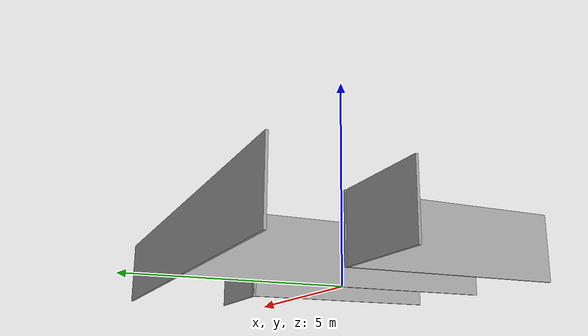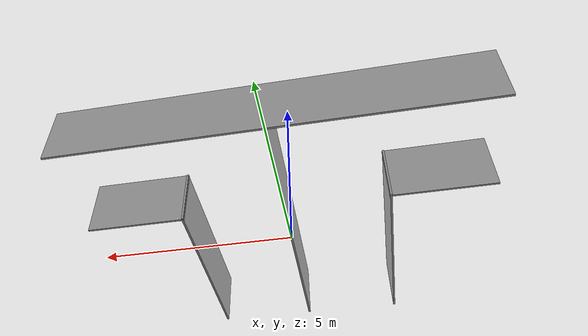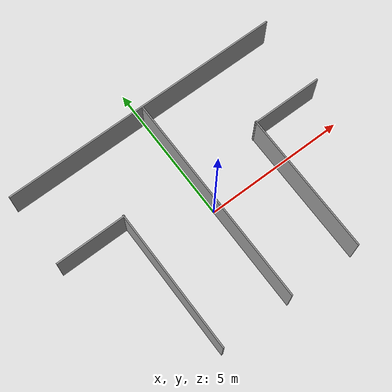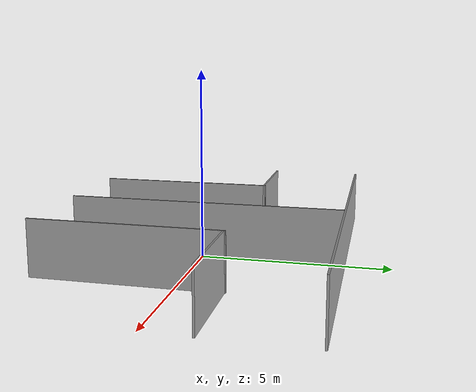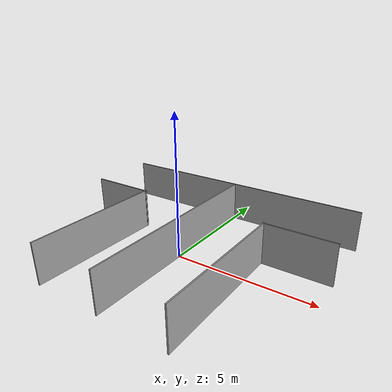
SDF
<?xml version='1.0'?>
<sdf version='1.7'>
  <model name='wall_krti2023'>
    <pose>0 0 0 0 -0 0</pose>
    <link name='Wall_0'>
      <collision name='Wall_0_Collision'>
        <geometry>
          <box>
            <size>7.5 0.05 1.5</size>
          </box>
        </geometry>
        <pose>0 0 0.75 0 -0 0</pose>
      </collision>
      <visual name='Wall_0_Visual'>
        <pose>0 0 0.75 0 -0 0</pose>
        <geometry>
          <box>
            <size>7.5 0.05 1.5</size>
          </box>
        </geometry>
        <material>
          <script>
            <uri>file://media/materials/scripts/gazebo.material</uri>
            <name>Gazebo/Grey</name>
          </script>
          <ambient>1 1 1 1</ambient>
        </material>
        <meta>
          <layer>0</layer>
        </meta>
      </visual>
      <pose>-0 0 0 0 -0 -1.5708</pose>
    </link>
    <link name='Wall_10'>
      <collision name='Wall_10_Collision'>
        <geometry>
          <box>
            <size>2.5 0.05 1.5</size>
          </box>
        </geometry>
        <pose>0 0 0.75 0 -0 0</pose>
      </collision>
      <visual name='Wall_10_Visual'>
        <pose>0 0 0.75 0 -0 0</pose>
        <geometry>
          <box>
            <size>2.5 0.05 1.5</size>
          </box>
        </geometry>
        <material>
          <script>
            <uri>file://media/materials/scripts/gazebo.material</uri>
            <name>Gazebo/Grey</name>
          </script>
          <ambient>1 1 1 1</ambient>
        </material>
        <meta>
          <layer>0</layer>
        </meta>
      </visual>
      <pose>-3.765 1.2 0 0 -0 3.14159</pose>
    </link>
    <link name='Wall_13'>
      <collision name='Wall_13_Collision'>
        <geometry>
          <box>
            <size>5 0.05 1.5</size>
          </box>
        </geometry>
        <pose>0 0 0.75 0 -0 0</pose>
      </collision>
      <visual name='Wall_13_Visual'>
        <pose>0 0 0.75 0 -0 0</pose>
        <geometry>
          <box>
            <size>5 0.05 1.5</size>
          </box>
        </geometry>
        <material>
          <script>
            <uri>file://media/materials/scripts/gazebo.material</uri>
            <name>Gazebo/Grey</name>
          </script>
          <ambient>1 1 1 1</ambient>
        </material>
        <meta>
          <layer>0</layer>
        </meta>
      </visual>
      <pose>2.55 -1.25 0 0 -0 1.5708</pose>
    </link>
    <link name='Wall_14'>
      <collision name='Wall_14_Collision'>
        <geometry>
          <box>
            <size>2.5 0.05 1.5</size>
          </box>
        </geometry>
        <pose>0 0 0.75 0 -0 0</pose>
      </collision>
      <visual name='Wall_14_Visual'>
        <pose>0 0 0.75 0 -0 0</pose>
        <geometry>
          <box>
            <size>2.5 0.05 1.5</size>
          </box>
        </geometry>
        <material>
          <script>
            <uri>file://media/materials/scripts/gazebo.material</uri>
            <name>Gazebo/Grey</name>
          </script>
          <ambient>1 1 1 1</ambient>
        </material>
        <meta>
          <layer>0</layer>
        </meta>
      </visual>
      <pose>3.765 1.2 0 0 -0 0</pose>
    </link>
    <link name='Wall_3'>
      <collision name='Wall_3_Collision'>
        <geometry>
          <box>
            <size>10 0.05 1.5</size>
          </box>
        </geometry>
        <pose>0 0 0.75 0 -0 0</pose>
      </collision>
      <visual name='Wall_3_Visual'>
        <pose>0 0 0.75 0 -0 0</pose>
        <geometry>
          <box>
            <size>10 0.05 1.5</size>
          </box>
        </geometry>
        <material>
          <script>
            <uri>file://media/materials/scripts/gazebo.material</uri>
            <name>Gazebo/Grey</name>
          </script>
          <ambient>1 1 1 1</ambient>
        </material>
        <meta>
          <layer>0</layer>
        </meta>
      </visual>
      <pose>0 3.78 0 0 -0 0</pose>
    </link>
    <link name='Wall_9'>
      <collision name='Wall_9_Collision'>
        <geometry>
          <box>
            <size>5 0.05 1.5</size>
          </box>
        </geometry>
        <pose>0 0 0.75 0 -0 0</pose>
      </collision>
      <visual name='Wall_9_Visual'>
        <pose>0 0 0.75 0 -0 0</pose>
        <geometry>
          <box>
            <size>5 0.05 1.5</size>
          </box>
        </geometry>
        <material>
          <script>
            <uri>file://media/materials/scripts/gazebo.material</uri>
            <name>Gazebo/Grey</name>
          </script>
          <ambient>1 1 1 1</ambient>
        </material>
        <meta>
          <layer>0</layer>
        </meta>
      </visual>
      <pose>-2.55 -1.25 0 0 -0 1.5708</pose>
    </link>
    <static>1</static>
  </model>
</sdf>
